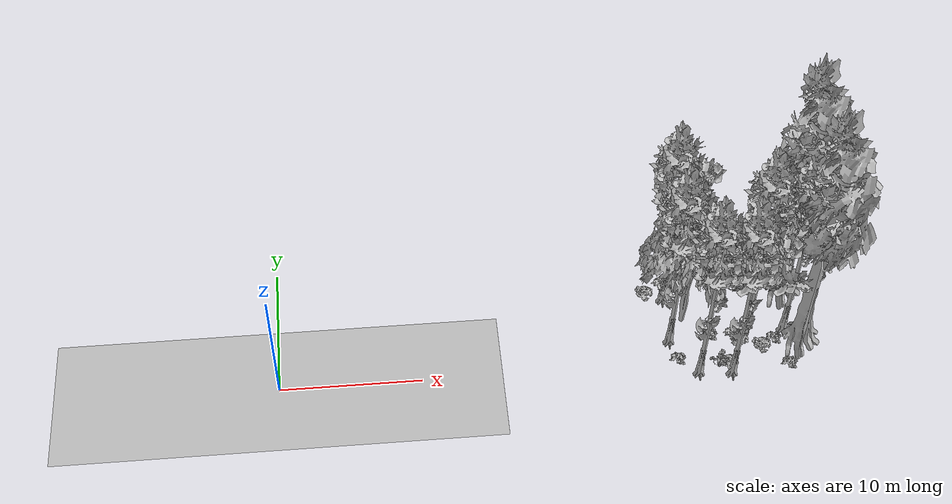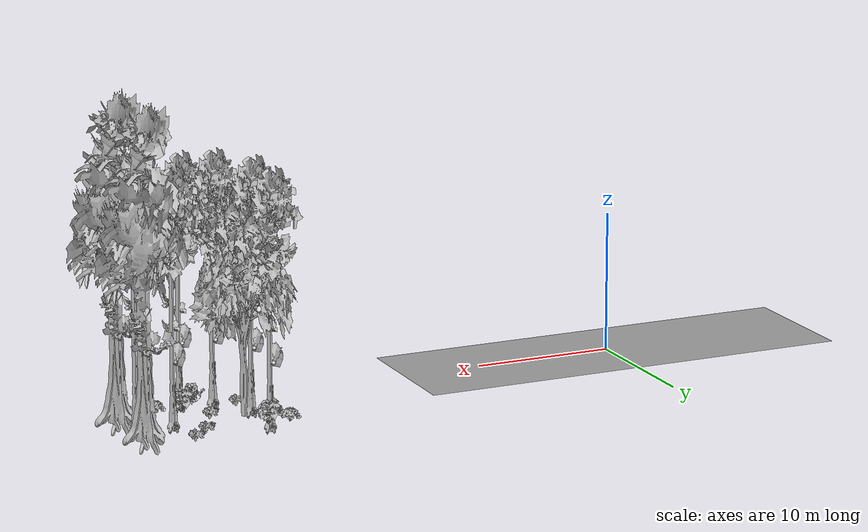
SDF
<sdf version="1.7">
 <world name="default">
  <model name="ground_plane">
   <static>1</static>
   <link name="link">
    <collision name="collision">
     <geometry><plane><normal>0 0 1</normal><size>100 100</size></plane></geometry>
     <surface><contact><ode><min_depth>0.01</min_depth><max_vel>0</max_vel></ode></contact></surface>
    </collision>
    <visual name="grass">
     <cast_shadows>0</cast_shadows>
     <geometry>
      <mesh>
       <scale>0.5814285714285714 0.18142857142857144 0.1</scale>
       <uri>file://grass_plane/meshes/grass_plane.dae</uri>
      </mesh>
     </geometry>
    </visual>
   </link>
  </model>
  <model name="Tree 17">
   <static>1</static>
   <pose>27.890801383413674 2.0910277010316953 0 1.57079 -0 0</pose>
   <link name="link">
    <collision name="collision">
     <geometry><mesh><scale>3.5 5 3.5</scale><uri>model://tree_9/meshes/tree_9.obj</uri></mesh></geometry>
    </collision>
    <visual name="visual">
     <geometry><mesh><scale>3.5 5 3.5</scale><uri>model://tree_9/meshes/tree_9.obj</uri></mesh></geometry>
    </visual>
   </link>
  </model>
  <model name="Tree 136">
   <static>1</static>
   <pose>29.577469516215032 -0.7654137916990251 0 1.57079 -0 0</pose>
   <link name="link">
    <collision name="collision">
     <geometry><mesh><scale>3.5 5 3.5</scale><uri>model://tree_9/meshes/tree_9.obj</uri></mesh></geometry>
    </collision>
    <visual name="visual">
     <geometry><mesh><scale>3.5 5 3.5</scale><uri>model://tree_9/meshes/tree_9.obj</uri></mesh></geometry>
    </visual>
   </link>
  </model>
  <model name="Tree 167">
   <static>1</static>
   <pose>37.104256361512896 1.4636782941421487 0 1.57079 -0 0</pose>
   <link name="link">
    <collision name="collision">
     <geometry><mesh><scale>3.5 5 3.5</scale><uri>model://tree_4/meshes/tree_4.obj</uri></mesh></geometry>
    </collision>
    <visual name="visual">
     <geometry><mesh><scale>3.5 5 3.5</scale><uri>model://tree_4/meshes/tree_4.obj</uri></mesh></geometry>
    </visual>
   </link>
  </model>
  <model name="Tree 197">
   <static>1</static>
   <pose>27.98991404924662 5.826642599038017 0 1.57079 -0 0</pose>
   <link name="link">
    <collision name="collision">
     <geometry><mesh><scale>3.5 5 3.5</scale><uri>model://tree_9/meshes/tree_9.obj</uri></mesh></geometry>
    </collision>
    <visual name="visual">
     <geometry><mesh><scale>3.5 5 3.5</scale><uri>model://tree_9/meshes/tree_9.obj</uri></mesh></geometry>
    </visual>
   </link>
  </model>
  <model name="Tree 200">
   <static>1</static>
   <pose>33.81115038289168 3.0455103783842894 0 1.57079 -0 0</pose>
   <link name="link">
    <collision name="collision">
     <geometry><mesh><scale>3.5 5 3.5</scale><uri>model://tree_9/meshes/tree_9.obj</uri></mesh></geometry>
    </collision>
    <visual name="visual">
     <geometry><mesh><scale>3.5 5 3.5</scale><uri>model://tree_9/meshes/tree_9.obj</uri></mesh></geometry>
    </visual>
   </link>
  </model>
  <model name="Tree 321">
   <static>1</static>
   <pose>36.241703267393504 2.5325392604633556 0 1.57079 -0 0</pose>
   <link name="link">
    <collision name="collision">
     <geometry><mesh><scale>3.5 5 3.5</scale><uri>model://tree_9/meshes/tree_9.obj</uri></mesh></geometry>
    </collision>
    <visual name="visual">
     <geometry><mesh><scale>3.5 5 3.5</scale><uri>model://tree_9/meshes/tree_9.obj</uri></mesh></geometry>
    </visual>
   </link>
  </model>
  <model name="Tree 365">
   <static>1</static>
   <pose>31.911139161806346 -0.9438365620989426 0 1.57079 -0 0</pose>
   <link name="link">
    <collision name="collision">
     <geometry><mesh><scale>3.5 5 3.5</scale><uri>model://tree_9/meshes/tree_9.obj</uri></mesh></geometry>
    </collision>
    <visual name="visual">
     <geometry><mesh><scale>3.5 5 3.5</scale><uri>model://tree_9/meshes/tree_9.obj</uri></mesh></geometry>
    </visual>
   </link>
  </model>
  <model name="Tree 410">
   <static>1</static>
   <pose>28.96686432237769 3.7096321373078354 0 1.57079 -0 0</pose>
   <link name="link">
    <collision name="collision">
     <geometry><mesh><scale>3.5 5 3.5</scale><uri>model://tree_2/meshes/tree_2.obj</uri></mesh></geometry>
    </collision>
    <visual name="visual">
     <geometry><mesh><scale>3.5 5 3.5</scale><uri>model://tree_2/meshes/tree_2.obj</uri></mesh></geometry>
    </visual>
   </link>
  </model>
  <model name="Tree 417">
   <static>1</static>
   <pose>36.71119699782605 5.920458096901466 0 1.57079 -0 0</pose>
   <link name="link">
    <collision name="collision">
     <geometry><mesh><scale>3.5 5 3.5</scale><uri>model://tree_4/meshes/tree_4.obj</uri></mesh></geometry>
    </collision>
    <visual name="visual">
     <geometry><mesh><scale>3.5 5 3.5</scale><uri>model://tree_4/meshes/tree_4.obj</uri></mesh></geometry>
    </visual>
   </link>
  </model>
  <model name="Bush 19">
   <static>1</static>
   <pose>33.38844966651283 6.399573543602298 0 1.57079 -0 0</pose>
   <link name="link">
    <collision name="collision">
     <geometry><mesh><scale>2 2 2</scale><uri>model://bush_2/meshes/bush_2.obj</uri></mesh></geometry>
     <surface><contact><collide_without_contact>false</collide_without_contact></contact></surface>
    </collision>
    <visual name="visual">
     <geometry><mesh><scale>2 2 2</scale><uri>model://bush_2/meshes/bush_2.obj</uri></mesh></geometry>
    </visual>
   </link>
  </model>
  <model name="Bush 23">
   <static>1</static>
   <pose>35.36081344960846 1.562880220549225 0 1.57079 -0 0</pose>
   <link name="link">
    <collision name="collision">
     <geometry><mesh><scale>2 2 2</scale><uri>model://bush_2/meshes/bush_2.obj</uri></mesh></geometry>
     <surface><contact><collide_without_contact>false</collide_without_contact></contact></surface>
    </collision>
    <visual name="visual">
     <geometry><mesh><scale>2 2 2</scale><uri>model://bush_2/meshes/bush_2.obj</uri></mesh></geometry>
    </visual>
   </link>
  </model>
  <model name="Bush 24">
   <static>1</static>
   <pose>32.590149765725016 1.2549133909987376 0 1.57079 -0 0</pose>
   <link name="link">
    <collision name="collision">
     <geometry><mesh><scale>2 2 2</scale><uri>model://bush_1/meshes/bush_1.obj</uri></mesh></geometry>
     <surface><contact><collide_without_contact>false</collide_without_contact></contact></surface>
    </collision>
    <visual name="visual">
     <geometry><mesh><scale>2 2 2</scale><uri>model://bush_1/meshes/bush_1.obj</uri></mesh></geometry>
    </visual>
   </link>
  </model>
  <model name="Bush 35">
   <static>1</static>
   <pose>26.717426317930602 6.086774512758403 0 1.57079 -0 0</pose>
   <link name="link">
    <collision name="collision">
     <geometry><mesh><scale>2 2 2</scale><uri>model://bush_3/meshes/bush_3.obj</uri></mesh></geometry>
     <surface><contact><collide_without_contact>false</collide_without_contact></contact></surface>
    </collision>
    <visual name="visual">
     <geometry><mesh><scale>2 2 2</scale><uri>model://bush_3/meshes/bush_3.obj</uri></mesh></geometry>
    </visual>
   </link>
  </model>
  <model name="Bush 92">
   <static>1</static>
   <pose>34.362440051681006 0.8624339930138945 0 1.57079 -0 0</pose>
   <link name="link">
    <collision name="collision">
     <geometry><mesh><scale>2 2 2</scale><uri>model://bush_3/meshes/bush_3.obj</uri></mesh></geometry>
     <surface><contact><collide_without_contact>false</collide_without_contact></contact></surface>
    </collision>
    <visual name="visual">
     <geometry><mesh><scale>2 2 2</scale><uri>model://bush_3/meshes/bush_3.obj</uri></mesh></geometry>
    </visual>
   </link>
  </model>
  <model name="Bush 158">
   <static>1</static>
   <pose>32.172547346831024 5.056035837807993 0 1.57079 -0 0</pose>
   <link name="link">
    <collision name="collision">
     <geometry><mesh><scale>2 2 2</scale><uri>model://bush_2/meshes/bush_2.obj</uri></mesh></geometry>
     <surface><contact><collide_without_contact>false</collide_without_contact></contact></surface>
    </collision>
    <visual name="visual">
     <geometry><mesh><scale>2 2 2</scale><uri>model://bush_2/meshes/bush_2.obj</uri></mesh></geometry>
    </visual>
   </link>
  </model>
  <model name="Bush 164">
   <static>1</static>
   <pose>36.0598093530553 -0.6532211525086744 0 1.57079 -0 0</pose>
   <link name="link">
    <collision name="collision">
     <geometry><mesh><scale>2 2 2</scale><uri>model://bush_2/meshes/bush_2.obj</uri></mesh></geometry>
     <surface><contact><collide_without_contact>false</collide_without_contact></contact></surface>
    </collision>
    <visual name="visual">
     <geometry><mesh><scale>2 2 2</scale><uri>model://bush_2/meshes/bush_2.obj</uri></mesh></geometry>
    </visual>
   </link>
  </model>
  <model name="Bush 174">
   <static>1</static>
   <pose>28.202103844586674 6.053836667187305 0 1.57079 -0 0</pose>
   <link name="link">
    <collision name="collision">
     <geometry><mesh><scale>2 2 2</scale><uri>model://bush_1/meshes/bush_1.obj</uri></mesh></geometry>
     <surface><contact><collide_without_contact>false</collide_without_contact></contact></surface>
    </collision>
    <visual name="visual">
     <geometry><mesh><scale>2 2 2</scale><uri>model://bush_1/meshes/bush_1.obj</uri></mesh></geometry>
    </visual>
   </link>
  </model>
  <model name="Bush 208">
   <static>1</static>
   <pose>31.085578698487254 -0.47899535104844304 0 1.57079 -0 0</pose>
   <link name="link">
    <collision name="collision">
     <geometry><mesh><scale>2 2 2</scale><uri>model://bush_4/meshes/bush_4.obj</uri></mesh></geometry>
     <surface><contact><collide_without_contact>false</collide_without_contact></contact></surface>
    </collision>
    <visual name="visual">
     <geometry><mesh><scale>2 2 2</scale><uri>model://bush_4/meshes/bush_4.obj</uri></mesh></geometry>
    </visual>
   </link>
  </model>
  <model name="Bush 295">
   <static>1</static>
   <pose>30.838981988348976 2.206283567259888 0 1.57079 -0 0</pose>
   <link name="link">
    <collision name="collision">
     <geometry><mesh><scale>2 2 2</scale><uri>model://bush_2/meshes/bush_2.obj</uri></mesh></geometry>
     <surface><contact><collide_without_contact>false</collide_without_contact></contact></surface>
    </collision>
    <visual name="visual">
     <geometry><mesh><scale>2 2 2</scale><uri>model://bush_2/meshes/bush_2.obj</uri></mesh></geometry>
    </visual>
   </link>
  </model>
  <model name="Bush 323">
   <static>1</static>
   <pose>28.22950329565502 0.3075953628777306 0 1.57079 -0 0</pose>
   <link name="link">
    <collision name="collision">
     <geometry><mesh><scale>2 2 2</scale><uri>model://bush_2/meshes/bush_2.obj</uri></mesh></geometry>
     <surface><contact><collide_without_contact>false</collide_without_contact></contact></surface>
    </collision>
    <visual name="visual">
     <geometry><mesh><scale>2 2 2</scale><uri>model://bush_2/meshes/bush_2.obj</uri></mesh></geometry>
    </visual>
   </link>
  </model>
  <model name="Bush 329">
   <static>1</static>
   <pose>31.790348712250974 -0.4229191228861673 0 1.57079 -0 0</pose>
   <link name="link">
    <collision name="collision">
     <geometry><mesh><scale>2 2 2</scale><uri>model://bush_3/meshes/bush_3.obj</uri></mesh></geometry>
     <surface><contact><collide_without_contact>false</collide_without_contact></contact></surface>
    </collision>
    <visual name="visual">
     <geometry><mesh><scale>2 2 2</scale><uri>model://bush_3/meshes/bush_3.obj</uri></mesh></geometry>
    </visual>
   </link>
  </model>
 </world>
</sdf>
